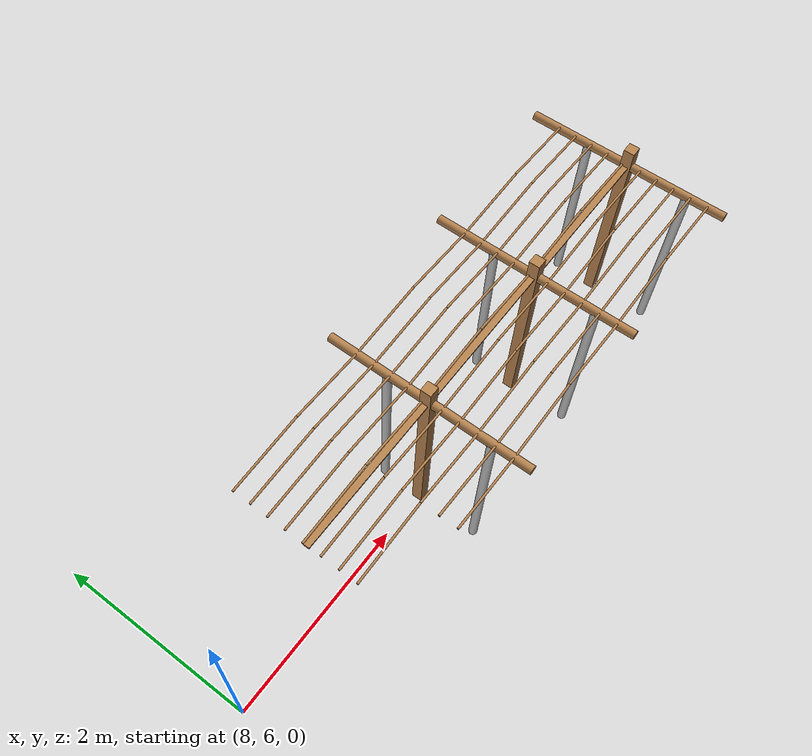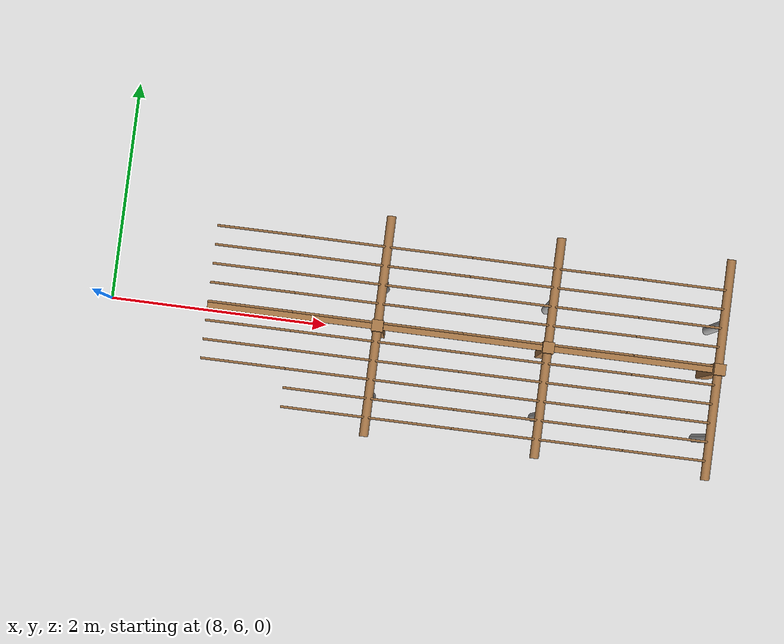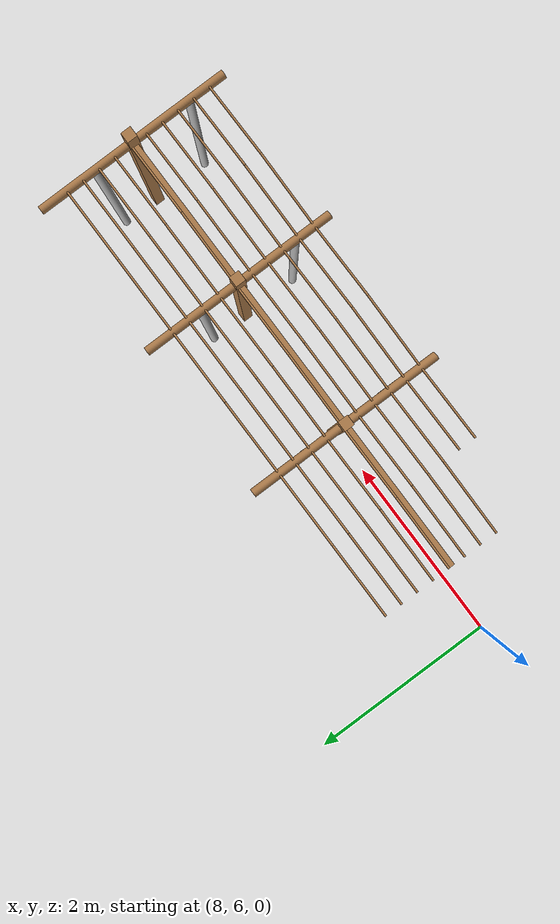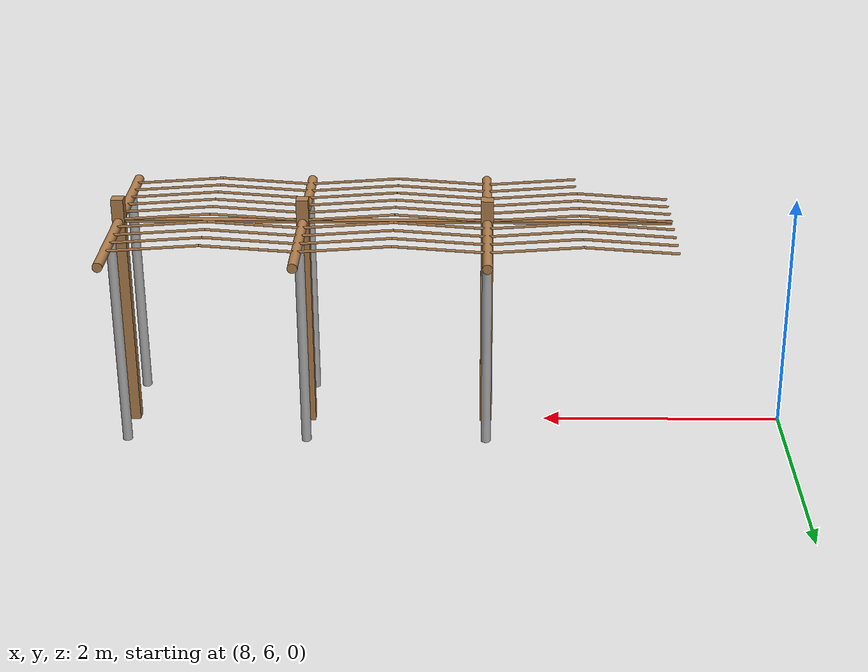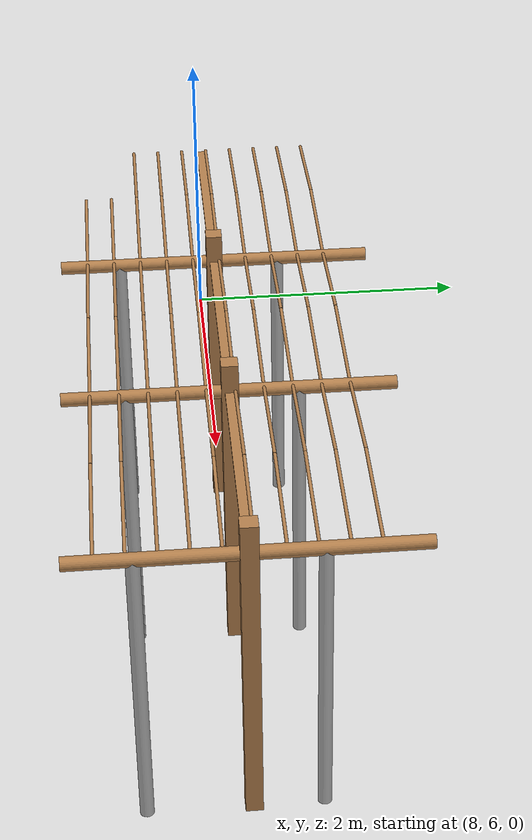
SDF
<sdf version="1.4">
 <model name="pergola">
  <include><name>post_83</name><pose>10.5 6.0 0 0 0 0</pose><uri>model://post</uri></include>
  <include><name>post_94</name><pose>12.0 6.0 0 0 0 0</pose><uri>model://post</uri></include>
  <include><name>post_105</name><pose>13.5 6.0 0 0 0 0</pose><uri>model://post</uri></include>
  <link name="beam_72">
   <pose>9.75 6.0 1.81 0 0 0</pose>
   <collision name="collision"><geometry><box><size>1.5 0.06 0.02</size></box></geometry></collision>
   <visual name="visual">
    <geometry><box><size>1.5 0.06 0.02</size></box></geometry>
    <material><script><name>Gazebo/Wood</name></script></material>
   </visual>
   <inertial>
    <mass>5</mass>
    <inertia>
     <ixx>0.0016666666666666668</ixx>
     <ixy>0.0</ixy>
     <ixz>0.0</ixz>
     <iyy>0.9390000000000001</iyy>
     <iyz>0.0</iyz>
     <izz>0.9376666666666665</izz>
    </inertia>
   </inertial>
  </link>
  <link name="beam_83">
   <pose>11.25 6.0 1.81 0 0 0</pose>
   <collision name="collision"><geometry><box><size>1.5 0.06 0.02</size></box></geometry></collision>
   <visual name="visual">
    <geometry><box><size>1.5 0.06 0.02</size></box></geometry>
    <material><script><name>Gazebo/Wood</name></script></material>
   </visual>
   <inertial>
    <mass>5</mass>
    <inertia>
     <ixx>0.0016666666666666668</ixx>
     <ixy>0.0</ixy>
     <ixz>0.0</ixz>
     <iyy>0.9390000000000001</iyy>
     <iyz>0.0</iyz>
     <izz>0.9376666666666665</izz>
    </inertia>
   </inertial>
  </link>
  <link name="beam_94">
   <pose>12.75 6.0 1.81 0 0 0</pose>
   <collision name="collision"><geometry><box><size>1.5 0.06 0.02</size></box></geometry></collision>
   <visual name="visual">
    <geometry><box><size>1.5 0.06 0.02</size></box></geometry>
    <material><script><name>Gazebo/Wood</name></script></material>
   </visual>
   <inertial>
    <mass>5</mass>
    <inertia>
     <ixx>0.0016666666666666668</ixx>
     <ixy>0.0</ixy>
     <ixz>0.0</ixz>
     <iyy>0.9390000000000001</iyy>
     <iyz>0.0</iyz>
     <izz>0.9376666666666665</izz>
    </inertia>
   </inertial>
  </link>
  <include><name>tree_75</name><pose>10.5 5.4 0 0 0 0</pose><uri>model://tree_trunk</uri></include>
  <include><name>tree_76</name><pose>10.5 6.4 0 0 0 0</pose><uri>model://tree_trunk</uri></include>
  <include><name>tree_85</name><pose>12.0 5.4 0 0 0 0</pose><uri>model://tree_trunk</uri></include>
  <include><name>tree_86</name><pose>12.0 6.4 0 0 0 0</pose><uri>model://tree_trunk</uri></include>
  <include><name>tree_95</name><pose>13.5 5.4 0 0 0 0</pose><uri>model://tree_trunk</uri></include>
  <include><name>tree_96</name><pose>13.5 6.4 0 0 0 0</pose><uri>model://tree_trunk</uri></include>
  <link name="baseBranch_75">
   <pose>10.5 5.5 1.8 1.5707963267948966 0 0</pose>
   <collision name="collision">
    <geometry><cylinder><radius>0.04</radius><length>0.94</length></cylinder></geometry>
   </collision>
   <visual name="visual">
    <geometry><cylinder><radius>0.04</radius><length>0.94</length></cylinder></geometry>
    <material><script><name>Gazebo/WoodFloor</name></script></material>
   </visual>
   <inertial>
    <mass>10</mass>
    <inertia>
     <ixx>0.7403333333333334</ixx>
     <ixy>0.0</ixy>
     <ixz>0.0</ixz>
     <iyy>0.7403333333333334</iyy>
     <iyz>0.0</iyz>
     <izz>0.008</izz>
    </inertia>
   </inertial>
  </link>
  <link name="baseBranch_76">
   <pose>10.5 6.5 1.8 1.5707963267948966 0 0</pose>
   <collision name="collision">
    <geometry><cylinder><radius>0.04</radius><length>0.94</length></cylinder></geometry>
   </collision>
   <visual name="visual">
    <geometry><cylinder><radius>0.04</radius><length>0.94</length></cylinder></geometry>
    <material><script><name>Gazebo/WoodFloor</name></script></material>
   </visual>
   <inertial>
    <mass>10</mass>
    <inertia>
     <ixx>0.7403333333333334</ixx>
     <ixy>0.0</ixy>
     <ixz>0.0</ixz>
     <iyy>0.7403333333333334</iyy>
     <iyz>0.0</iyz>
     <izz>0.008</izz>
    </inertia>
   </inertial>
  </link>
  <link name="baseBranch_85">
   <pose>12.0 5.5 1.8 1.5707963267948966 0 0</pose>
   <collision name="collision">
    <geometry><cylinder><radius>0.04</radius><length>0.94</length></cylinder></geometry>
   </collision>
   <visual name="visual">
    <geometry><cylinder><radius>0.04</radius><length>0.94</length></cylinder></geometry>
    <material><script><name>Gazebo/WoodFloor</name></script></material>
   </visual>
   <inertial>
    <mass>10</mass>
    <inertia>
     <ixx>0.7403333333333334</ixx>
     <ixy>0.0</ixy>
     <ixz>0.0</ixz>
     <iyy>0.7403333333333334</iyy>
     <iyz>0.0</iyz>
     <izz>0.008</izz>
    </inertia>
   </inertial>
  </link>
  <link name="baseBranch_86">
   <pose>12.0 6.5 1.8 1.5707963267948966 0 0</pose>
   <collision name="collision">
    <geometry><cylinder><radius>0.04</radius><length>0.94</length></cylinder></geometry>
   </collision>
   <visual name="visual">
    <geometry><cylinder><radius>0.04</radius><length>0.94</length></cylinder></geometry>
    <material><script><name>Gazebo/WoodFloor</name></script></material>
   </visual>
   <inertial>
    <mass>10</mass>
    <inertia>
     <ixx>0.7403333333333334</ixx>
     <ixy>0.0</ixy>
     <ixz>0.0</ixz>
     <iyy>0.7403333333333334</iyy>
     <iyz>0.0</iyz>
     <izz>0.008</izz>
    </inertia>
   </inertial>
  </link>
  <link name="baseBranch_95">
   <pose>13.5 5.5 1.8 1.5707963267948966 0 0</pose>
   <collision name="collision">
    <geometry><cylinder><radius>0.04</radius><length>0.94</length></cylinder></geometry>
   </collision>
   <visual name="visual">
    <geometry><cylinder><radius>0.04</radius><length>0.94</length></cylinder></geometry>
    <material><script><name>Gazebo/WoodFloor</name></script></material>
   </visual>
   <inertial>
    <mass>10</mass>
    <inertia>
     <ixx>0.7403333333333334</ixx>
     <ixy>0.0</ixy>
     <ixz>0.0</ixz>
     <iyy>0.7403333333333334</iyy>
     <iyz>0.0</iyz>
     <izz>0.008</izz>
    </inertia>
   </inertial>
  </link>
  <link name="baseBranch_96">
   <pose>13.5 6.5 1.8 1.5707963267948966 0 0</pose>
   <collision name="collision">
    <geometry><cylinder><radius>0.04</radius><length>0.94</length></cylinder></geometry>
   </collision>
   <visual name="visual">
    <geometry><cylinder><radius>0.04</radius><length>0.94</length></cylinder></geometry>
    <material><script><name>Gazebo/WoodFloor</name></script></material>
   </visual>
   <inertial>
    <mass>10</mass>
    <inertia>
     <ixx>0.7403333333333334</ixx>
     <ixy>0.0</ixy>
     <ixz>0.0</ixz>
     <iyy>0.7403333333333334</iyy>
     <iyz>0.0</iyz>
     <izz>0.008</izz>
    </inertia>
   </inertial>
  </link>
  <link name="vine_783">
   <pose>10.125 5.196666666666666 1.85 0 -1.5042281630190728 0</pose>
   <collision name="collision">
    <geometry><cylinder><radius>0.01</radius><length>0.7516648189186453</length></cylinder></geometry>
   </collision>
   <visual name="visual">
    <geometry><cylinder><radius>0.01</radius><length>0.7516648189186453</length></cylinder></geometry>
    <material><script><name>Gazebo/WoodFloor</name></script></material>
   </visual>
   <inertial>
    <mass>5</mass>
    <inertia>
     <ixx>0.23554166666666657</ixx>
     <ixy>0.0</ixy>
     <ixz>0.0</ixz>
     <iyy>0.23554166666666657</iyy>
     <iyz>0.0</iyz>
     <izz>0.00025</izz>
    </inertia>
   </inertial>
  </link>
  <link name="vine_785">
   <pose>10.125 5.363333333333333 1.85 0 -1.5042281630190728 0</pose>
   <collision name="collision">
    <geometry><cylinder><radius>0.01</radius><length>0.7516648189186453</length></cylinder></geometry>
   </collision>
   <visual name="visual">
    <geometry><cylinder><radius>0.01</radius><length>0.7516648189186453</length></cylinder></geometry>
    <material><script><name>Gazebo/WoodFloor</name></script></material>
   </visual>
   <inertial>
    <mass>5</mass>
    <inertia>
     <ixx>0.23554166666666657</ixx>
     <ixy>0.0</ixy>
     <ixz>0.0</ixz>
     <iyy>0.23554166666666657</iyy>
     <iyz>0.0</iyz>
     <izz>0.00025</izz>
    </inertia>
   </inertial>
  </link>
  <link name="vine_786">
   <pose>9.375 5.53 1.85 0 1.5042281630190728 0</pose>
   <collision name="collision">
    <geometry><cylinder><radius>0.01</radius><length>0.7516648189186453</length></cylinder></geometry>
   </collision>
   <visual name="visual">
    <geometry><cylinder><radius>0.01</radius><length>0.7516648189186453</length></cylinder></geometry>
    <material><script><name>Gazebo/WoodFloor</name></script></material>
   </visual>
   <inertial>
    <mass>5</mass>
    <inertia>
     <ixx>0.23554166666666657</ixx>
     <ixy>0.0</ixy>
     <ixz>0.0</ixz>
     <iyy>0.23554166666666657</iyy>
     <iyz>0.0</iyz>
     <izz>0.00025</izz>
    </inertia>
   </inertial>
  </link>
  <link name="vine_787">
   <pose>10.125 5.53 1.85 0 -1.5042281630190728 0</pose>
   <collision name="collision">
    <geometry><cylinder><radius>0.01</radius><length>0.7516648189186453</length></cylinder></geometry>
   </collision>
   <visual name="visual">
    <geometry><cylinder><radius>0.01</radius><length>0.7516648189186453</length></cylinder></geometry>
    <material><script><name>Gazebo/WoodFloor</name></script></material>
   </visual>
   <inertial>
    <mass>5</mass>
    <inertia>
     <ixx>0.23554166666666657</ixx>
     <ixy>0.0</ixy>
     <ixz>0.0</ixz>
     <iyy>0.23554166666666657</iyy>
     <iyz>0.0</iyz>
     <izz>0.00025</izz>
    </inertia>
   </inertial>
  </link>
  <link name="vine_788">
   <pose>9.375 5.696666666666666 1.85 0 1.5042281630190728 0</pose>
   <collision name="collision">
    <geometry><cylinder><radius>0.01</radius><length>0.7516648189186453</length></cylinder></geometry>
   </collision>
   <visual name="visual">
    <geometry><cylinder><radius>0.01</radius><length>0.7516648189186453</length></cylinder></geometry>
    <material><script><name>Gazebo/WoodFloor</name></script></material>
   </visual>
   <inertial>
    <mass>5</mass>
    <inertia>
     <ixx>0.23554166666666657</ixx>
     <ixy>0.0</ixy>
     <ixz>0.0</ixz>
     <iyy>0.23554166666666657</iyy>
     <iyz>0.0</iyz>
     <izz>0.00025</izz>
    </inertia>
   </inertial>
  </link>
  <link name="vine_789">
   <pose>10.125 5.696666666666666 1.85 0 -1.5042281630190728 0</pose>
   <collision name="collision">
    <geometry><cylinder><radius>0.01</radius><length>0.7516648189186453</length></cylinder></geometry>
   </collision>
   <visual name="visual">
    <geometry><cylinder><radius>0.01</radius><length>0.7516648189186453</length></cylinder></geometry>
    <material><script><name>Gazebo/WoodFloor</name></script></material>
   </visual>
   <inertial>
    <mass>5</mass>
    <inertia>
     <ixx>0.23554166666666657</ixx>
     <ixy>0.0</ixy>
     <ixz>0.0</ixz>
     <iyy>0.23554166666666657</iyy>
     <iyz>0.0</iyz>
     <izz>0.00025</izz>
    </inertia>
   </inertial>
  </link>
  <link name="vine_790">
   <pose>9.375 5.863333333333333 1.85 0 1.5042281630190728 0</pose>
   <collision name="collision">
    <geometry><cylinder><radius>0.01</radius><length>0.7516648189186453</length></cylinder></geometry>
   </collision>
   <visual name="visual">
    <geometry><cylinder><radius>0.01</radius><length>0.7516648189186453</length></cylinder></geometry>
    <material><script><name>Gazebo/WoodFloor</name></script></material>
   </visual>
   <inertial>
    <mass>5</mass>
    <inertia>
     <ixx>0.23554166666666657</ixx>
     <ixy>0.0</ixy>
     <ixz>0.0</ixz>
     <iyy>0.23554166666666657</iyy>
     <iyz>0.0</iyz>
     <izz>0.00025</izz>
    </inertia>
   </inertial>
  </link>
  <link name="vine_791">
   <pose>10.125 5.863333333333333 1.85 0 -1.5042281630190728 0</pose>
   <collision name="collision">
    <geometry><cylinder><radius>0.01</radius><length>0.7516648189186453</length></cylinder></geometry>
   </collision>
   <visual name="visual">
    <geometry><cylinder><radius>0.01</radius><length>0.7516648189186453</length></cylinder></geometry>
    <material><script><name>Gazebo/WoodFloor</name></script></material>
   </visual>
   <inertial>
    <mass>5</mass>
    <inertia>
     <ixx>0.23554166666666657</ixx>
     <ixy>0.0</ixy>
     <ixz>0.0</ixz>
     <iyy>0.23554166666666657</iyy>
     <iyz>0.0</iyz>
     <izz>0.00025</izz>
    </inertia>
   </inertial>
  </link>
  <link name="vine_792">
   <pose>9.375 6.03 1.85 0 1.5042281630190728 0</pose>
   <collision name="collision">
    <geometry><cylinder><radius>0.01</radius><length>0.7516648189186453</length></cylinder></geometry>
   </collision>
   <visual name="visual">
    <geometry><cylinder><radius>0.01</radius><length>0.7516648189186453</length></cylinder></geometry>
    <material><script><name>Gazebo/WoodFloor</name></script></material>
   </visual>
   <inertial>
    <mass>5</mass>
    <inertia>
     <ixx>0.23554166666666657</ixx>
     <ixy>0.0</ixy>
     <ixz>0.0</ixz>
     <iyy>0.23554166666666657</iyy>
     <iyz>0.0</iyz>
     <izz>0.00025</izz>
    </inertia>
   </inertial>
  </link>
  <link name="vine_793">
   <pose>10.125 6.03 1.85 0 -1.5042281630190728 0</pose>
   <collision name="collision">
    <geometry><cylinder><radius>0.01</radius><length>0.7516648189186453</length></cylinder></geometry>
   </collision>
   <visual name="visual">
    <geometry><cylinder><radius>0.01</radius><length>0.7516648189186453</length></cylinder></geometry>
    <material><script><name>Gazebo/WoodFloor</name></script></material>
   </visual>
   <inertial>
    <mass>5</mass>
    <inertia>
     <ixx>0.23554166666666657</ixx>
     <ixy>0.0</ixy>
     <ixz>0.0</ixz>
     <iyy>0.23554166666666657</iyy>
     <iyz>0.0</iyz>
     <izz>0.00025</izz>
    </inertia>
   </inertial>
  </link>
  <link name="vine_794">
   <pose>9.375 6.196666666666666 1.85 0 1.5042281630190728 0</pose>
   <collision name="collision">
    <geometry><cylinder><radius>0.01</radius><length>0.7516648189186453</length></cylinder></geometry>
   </collision>
   <visual name="visual">
    <geometry><cylinder><radius>0.01</radius><length>0.7516648189186453</length></cylinder></geometry>
    <material><script><name>Gazebo/WoodFloor</name></script></material>
   </visual>
   <inertial>
    <mass>5</mass>
    <inertia>
     <ixx>0.23554166666666657</ixx>
     <ixy>0.0</ixy>
     <ixz>0.0</ixz>
     <iyy>0.23554166666666657</iyy>
     <iyz>0.0</iyz>
     <izz>0.00025</izz>
    </inertia>
   </inertial>
  </link>
  <link name="vine_795">
   <pose>10.125 6.196666666666666 1.85 0 -1.5042281630190728 0</pose>
   <collision name="collision">
    <geometry><cylinder><radius>0.01</radius><length>0.7516648189186453</length></cylinder></geometry>
   </collision>
   <visual name="visual">
    <geometry><cylinder><radius>0.01</radius><length>0.7516648189186453</length></cylinder></geometry>
    <material><script><name>Gazebo/WoodFloor</name></script></material>
   </visual>
   <inertial>
    <mass>5</mass>
    <inertia>
     <ixx>0.23554166666666657</ixx>
     <ixy>0.0</ixy>
     <ixz>0.0</ixz>
     <iyy>0.23554166666666657</iyy>
     <iyz>0.0</iyz>
     <izz>0.00025</izz>
    </inertia>
   </inertial>
  </link>
  <link name="vine_796">
   <pose>9.375 6.363333333333333 1.85 0 1.5042281630190728 0</pose>
   <collision name="collision">
    <geometry><cylinder><radius>0.01</radius><length>0.7516648189186453</length></cylinder></geometry>
   </collision>
   <visual name="visual">
    <geometry><cylinder><radius>0.01</radius><length>0.7516648189186453</length></cylinder></geometry>
    <material><script><name>Gazebo/WoodFloor</name></script></material>
   </visual>
   <inertial>
    <mass>5</mass>
    <inertia>
     <ixx>0.23554166666666657</ixx>
     <ixy>0.0</ixy>
     <ixz>0.0</ixz>
     <iyy>0.23554166666666657</iyy>
     <iyz>0.0</iyz>
     <izz>0.00025</izz>
    </inertia>
   </inertial>
  </link>
  <link name="vine_797">
   <pose>10.125 6.363333333333333 1.85 0 -1.5042281630190728 0</pose>
   <collision name="collision">
    <geometry><cylinder><radius>0.01</radius><length>0.7516648189186453</length></cylinder></geometry>
   </collision>
   <visual name="visual">
    <geometry><cylinder><radius>0.01</radius><length>0.7516648189186453</length></cylinder></geometry>
    <material><script><name>Gazebo/WoodFloor</name></script></material>
   </visual>
   <inertial>
    <mass>5</mass>
    <inertia>
     <ixx>0.23554166666666657</ixx>
     <ixy>0.0</ixy>
     <ixz>0.0</ixz>
     <iyy>0.23554166666666657</iyy>
     <iyz>0.0</iyz>
     <izz>0.00025</izz>
    </inertia>
   </inertial>
  </link>
  <link name="vine_798">
   <pose>9.375 6.53 1.85 0 1.5042281630190728 0</pose>
   <collision name="collision">
    <geometry><cylinder><radius>0.01</radius><length>0.7516648189186453</length></cylinder></geometry>
   </collision>
   <visual name="visual">
    <geometry><cylinder><radius>0.01</radius><length>0.7516648189186453</length></cylinder></geometry>
    <material><script><name>Gazebo/WoodFloor</name></script></material>
   </visual>
   <inertial>
    <mass>5</mass>
    <inertia>
     <ixx>0.23554166666666657</ixx>
     <ixy>0.0</ixy>
     <ixz>0.0</ixz>
     <iyy>0.23554166666666657</iyy>
     <iyz>0.0</iyz>
     <izz>0.00025</izz>
    </inertia>
   </inertial>
  </link>
  <link name="vine_799">
   <pose>10.125 6.53 1.85 0 -1.5042281630190728 0</pose>
   <collision name="collision">
    <geometry><cylinder><radius>0.01</radius><length>0.7516648189186453</length></cylinder></geometry>
   </collision>
   <visual name="visual">
    <geometry><cylinder><radius>0.01</radius><length>0.7516648189186453</length></cylinder></geometry>
    <material><script><name>Gazebo/WoodFloor</name></script></material>
   </visual>
   <inertial>
    <mass>5</mass>
    <inertia>
     <ixx>0.23554166666666657</ixx>
     <ixy>0.0</ixy>
     <ixz>0.0</ixz>
     <iyy>0.23554166666666657</iyy>
     <iyz>0.0</iyz>
     <izz>0.00025</izz>
    </inertia>
   </inertial>
  </link>
  <link name="vine_800">
   <pose>9.375 6.696666666666666 1.85 0 1.5042281630190728 0</pose>
   <collision name="collision">
    <geometry><cylinder><radius>0.01</radius><length>0.7516648189186453</length></cylinder></geometry>
   </collision>
   <visual name="visual">
    <geometry><cylinder><radius>0.01</radius><length>0.7516648189186453</length></cylinder></geometry>
    <material><script><name>Gazebo/WoodFloor</name></script></material>
   </visual>
   <inertial>
    <mass>5</mass>
    <inertia>
     <ixx>0.23554166666666657</ixx>
     <ixy>0.0</ixy>
     <ixz>0.0</ixz>
     <iyy>0.23554166666666657</iyy>
     <iyz>0.0</iyz>
     <izz>0.00025</izz>
    </inertia>
   </inertial>
  </link>
  <link name="vine_801">
   <pose>10.125 6.696666666666666 1.85 0 -1.5042281630190728 0</pose>
   <collision name="collision">
    <geometry><cylinder><radius>0.01</radius><length>0.7516648189186453</length></cylinder></geometry>
   </collision>
   <visual name="visual">
    <geometry><cylinder><radius>0.01</radius><length>0.7516648189186453</length></cylinder></geometry>
    <material><script><name>Gazebo/WoodFloor</name></script></material>
   </visual>
   <inertial>
    <mass>5</mass>
    <inertia>
     <ixx>0.23554166666666657</ixx>
     <ixy>0.0</ixy>
     <ixz>0.0</ixz>
     <iyy>0.23554166666666657</iyy>
     <iyz>0.0</iyz>
     <izz>0.00025</izz>
    </inertia>
   </inertial>
  </link>
  <link name="vine_902">
   <pose>10.875 5.196666666666666 1.85 0 1.5042281630190728 0</pose>
   <collision name="collision">
    <geometry><cylinder><radius>0.01</radius><length>0.7516648189186453</length></cylinder></geometry>
   </collision>
   <visual name="visual">
    <geometry><cylinder><radius>0.01</radius><length>0.7516648189186453</length></cylinder></geometry>
    <material><script><name>Gazebo/WoodFloor</name></script></material>
   </visual>
   <inertial>
    <mass>5</mass>
    <inertia>
     <ixx>0.23554166666666657</ixx>
     <ixy>0.0</ixy>
     <ixz>0.0</ixz>
     <iyy>0.23554166666666657</iyy>
     <iyz>0.0</iyz>
     <izz>0.00025</izz>
    </inertia>
   </inertial>
  </link>
  <link name="vine_903">
   <pose>11.625 5.196666666666666 1.85 0 -1.5042281630190728 0</pose>
   <collision name="collision">
    <geometry><cylinder><radius>0.01</radius><length>0.7516648189186453</length></cylinder></geometry>
   </collision>
   <visual name="visual">
    <geometry><cylinder><radius>0.01</radius><length>0.7516648189186453</length></cylinder></geometry>
    <material><script><name>Gazebo/WoodFloor</name></script></material>
   </visual>
   <inertial>
    <mass>5</mass>
    <inertia>
     <ixx>0.23554166666666657</ixx>
     <ixy>0.0</ixy>
     <ixz>0.0</ixz>
     <iyy>0.23554166666666657</iyy>
     <iyz>0.0</iyz>
     <izz>0.00025</izz>
    </inertia>
   </inertial>
  </link>
  <link name="vine_904">
   <pose>10.875 5.363333333333333 1.85 0 1.5042281630190728 0</pose>
   <collision name="collision">
    <geometry><cylinder><radius>0.01</radius><length>0.7516648189186453</length></cylinder></geometry>
   </collision>
   <visual name="visual">
    <geometry><cylinder><radius>0.01</radius><length>0.7516648189186453</length></cylinder></geometry>
    <material><script><name>Gazebo/WoodFloor</name></script></material>
   </visual>
   <inertial>
    <mass>5</mass>
    <inertia>
     <ixx>0.23554166666666657</ixx>
     <ixy>0.0</ixy>
     <ixz>0.0</ixz>
     <iyy>0.23554166666666657</iyy>
     <iyz>0.0</iyz>
     <izz>0.00025</izz>
    </inertia>
   </inertial>
  </link>
  <link name="vine_905">
   <pose>11.625 5.363333333333333 1.85 0 -1.5042281630190728 0</pose>
   <collision name="collision">
    <geometry><cylinder><radius>0.01</radius><length>0.7516648189186453</length></cylinder></geometry>
   </collision>
   <visual name="visual">
    <geometry><cylinder><radius>0.01</radius><length>0.7516648189186453</length></cylinder></geometry>
    <material><script><name>Gazebo/WoodFloor</name></script></material>
   </visual>
   <inertial>
    <mass>5</mass>
    <inertia>
     <ixx>0.23554166666666657</ixx>
     <ixy>0.0</ixy>
     <ixz>0.0</ixz>
     <iyy>0.23554166666666657</iyy>
     <iyz>0.0</iyz>
     <izz>0.00025</izz>
    </inertia>
   </inertial>
  </link>
  <link name="vine_906">
   <pose>10.875 5.53 1.85 0 1.5042281630190728 0</pose>
   <collision name="collision">
    <geometry><cylinder><radius>0.01</radius><length>0.7516648189186453</length></cylinder></geometry>
   </collision>
   <visual name="visual">
    <geometry><cylinder><radius>0.01</radius><length>0.7516648189186453</length></cylinder></geometry>
    <material><script><name>Gazebo/WoodFloor</name></script></material>
   </visual>
   <inertial>
    <mass>5</mass>
    <inertia>
     <ixx>0.23554166666666657</ixx>
     <ixy>0.0</ixy>
     <ixz>0.0</ixz>
     <iyy>0.23554166666666657</iyy>
     <iyz>0.0</iyz>
     <izz>0.00025</izz>
    </inertia>
   </inertial>
  </link>
  <link name="vine_907">
   <pose>11.625 5.53 1.85 0 -1.5042281630190728 0</pose>
   <collision name="collision">
    <geometry><cylinder><radius>0.01</radius><length>0.7516648189186453</length></cylinder></geometry>
   </collision>
   <visual name="visual">
    <geometry><cylinder><radius>0.01</radius><length>0.7516648189186453</length></cylinder></geometry>
    <material><script><name>Gazebo/WoodFloor</name></script></material>
   </visual>
   <inertial>
    <mass>5</mass>
    <inertia>
     <ixx>0.23554166666666657</ixx>
     <ixy>0.0</ixy>
     <ixz>0.0</ixz>
     <iyy>0.23554166666666657</iyy>
     <iyz>0.0</iyz>
     <izz>0.00025</izz>
    </inertia>
   </inertial>
  </link>
  <link name="vine_908">
   <pose>10.875 5.696666666666666 1.85 0 1.5042281630190728 0</pose>
   <collision name="collision">
    <geometry><cylinder><radius>0.01</radius><length>0.7516648189186453</length></cylinder></geometry>
   </collision>
   <visual name="visual">
    <geometry><cylinder><radius>0.01</radius><length>0.7516648189186453</length></cylinder></geometry>
    <material><script><name>Gazebo/WoodFloor</name></script></material>
   </visual>
   <inertial>
    <mass>5</mass>
    <inertia>
     <ixx>0.23554166666666657</ixx>
     <ixy>0.0</ixy>
     <ixz>0.0</ixz>
     <iyy>0.23554166666666657</iyy>
     <iyz>0.0</iyz>
     <izz>0.00025</izz>
    </inertia>
   </inertial>
  </link>
  <link name="vine_909">
   <pose>11.625 5.696666666666666 1.85 0 -1.5042281630190728 0</pose>
   <collision name="collision">
    <geometry><cylinder><radius>0.01</radius><length>0.7516648189186453</length></cylinder></geometry>
   </collision>
   <visual name="visual">
    <geometry><cylinder><radius>0.01</radius><length>0.7516648189186453</length></cylinder></geometry>
    <material><script><name>Gazebo/WoodFloor</name></script></material>
   </visual>
   <inertial>
    <mass>5</mass>
    <inertia>
     <ixx>0.23554166666666657</ixx>
     <ixy>0.0</ixy>
     <ixz>0.0</ixz>
     <iyy>0.23554166666666657</iyy>
     <iyz>0.0</iyz>
     <izz>0.00025</izz>
    </inertia>
   </inertial>
  </link>
  <link name="vine_910">
   <pose>10.875 5.863333333333333 1.85 0 1.5042281630190728 0</pose>
   <collision name="collision">
    <geometry><cylinder><radius>0.01</radius><length>0.7516648189186453</length></cylinder></geometry>
   </collision>
   <visual name="visual">
    <geometry><cylinder><radius>0.01</radius><length>0.7516648189186453</length></cylinder></geometry>
    <material><script><name>Gazebo/WoodFloor</name></script></material>
   </visual>
   <inertial>
    <mass>5</mass>
    <inertia>
     <ixx>0.23554166666666657</ixx>
     <ixy>0.0</ixy>
     <ixz>0.0</ixz>
     <iyy>0.23554166666666657</iyy>
     <iyz>0.0</iyz>
     <izz>0.00025</izz>
    </inertia>
   </inertial>
  </link>
  <link name="vine_911">
   <pose>11.625 5.863333333333333 1.85 0 -1.5042281630190728 0</pose>
   <collision name="collision">
    <geometry><cylinder><radius>0.01</radius><length>0.7516648189186453</length></cylinder></geometry>
   </collision>
   <visual name="visual">
    <geometry><cylinder><radius>0.01</radius><length>0.7516648189186453</length></cylinder></geometry>
    <material><script><name>Gazebo/WoodFloor</name></script></material>
   </visual>
   <inertial>
    <mass>5</mass>
    <inertia>
     <ixx>0.23554166666666657</ixx>
     <ixy>0.0</ixy>
     <ixz>0.0</ixz>
     <iyy>0.23554166666666657</iyy>
     <iyz>0.0</iyz>
     <izz>0.00025</izz>
    </inertia>
   </inertial>
  </link>
  <link name="vine_912">
   <pose>10.875 6.03 1.85 0 1.5042281630190728 0</pose>
   <collision name="collision">
    <geometry><cylinder><radius>0.01</radius><length>0.7516648189186453</length></cylinder></geometry>
   </collision>
   <visual name="visual">
    <geometry><cylinder><radius>0.01</radius><length>0.7516648189186453</length></cylinder></geometry>
    <material><script><name>Gazebo/WoodFloor</name></script></material>
   </visual>
   <inertial>
    <mass>5</mass>
    <inertia>
     <ixx>0.23554166666666657</ixx>
     <ixy>0.0</ixy>
     <ixz>0.0</ixz>
     <iyy>0.23554166666666657</iyy>
     <iyz>0.0</iyz>
     <izz>0.00025</izz>
    </inertia>
   </inertial>
  </link>
  <link name="vine_913">
   <pose>11.625 6.03 1.85 0 -1.5042281630190728 0</pose>
   <collision name="collision">
    <geometry><cylinder><radius>0.01</radius><length>0.7516648189186453</length></cylinder></geometry>
   </collision>
   <visual name="visual">
    <geometry><cylinder><radius>0.01</radius><length>0.7516648189186453</length></cylinder></geometry>
    <material><script><name>Gazebo/WoodFloor</name></script></material>
   </visual>
   <inertial>
    <mass>5</mass>
    <inertia>
     <ixx>0.23554166666666657</ixx>
     <ixy>0.0</ixy>
     <ixz>0.0</ixz>
     <iyy>0.23554166666666657</iyy>
     <iyz>0.0</iyz>
     <izz>0.00025</izz>
    </inertia>
   </inertial>
  </link>
  <link name="vine_914">
   <pose>10.875 6.196666666666666 1.85 0 1.5042281630190728 0</pose>
   <collision name="collision">
    <geometry><cylinder><radius>0.01</radius><length>0.7516648189186453</length></cylinder></geometry>
   </collision>
   <visual name="visual">
    <geometry><cylinder><radius>0.01</radius><length>0.7516648189186453</length></cylinder></geometry>
    <material><script><name>Gazebo/WoodFloor</name></script></material>
   </visual>
   <inertial>
    <mass>5</mass>
    <inertia>
     <ixx>0.23554166666666657</ixx>
     <ixy>0.0</ixy>
     <ixz>0.0</ixz>
     <iyy>0.23554166666666657</iyy>
     <iyz>0.0</iyz>
     <izz>0.00025</izz>
    </inertia>
   </inertial>
  </link>
  <link name="vine_915">
   <pose>11.625 6.196666666666666 1.85 0 -1.5042281630190728 0</pose>
   <collision name="collision">
    <geometry><cylinder><radius>0.01</radius><length>0.7516648189186453</length></cylinder></geometry>
   </collision>
   <visual name="visual">
    <geometry><cylinder><radius>0.01</radius><length>0.7516648189186453</length></cylinder></geometry>
    <material><script><name>Gazebo/WoodFloor</name></script></material>
   </visual>
   <inertial>
    <mass>5</mass>
    <inertia>
     <ixx>0.23554166666666657</ixx>
     <ixy>0.0</ixy>
     <ixz>0.0</ixz>
     <iyy>0.23554166666666657</iyy>
     <iyz>0.0</iyz>
     <izz>0.00025</izz>
    </inertia>
   </inertial>
  </link>
  <link name="vine_916">
   <pose>10.875 6.363333333333333 1.85 0 1.5042281630190728 0</pose>
   <collision name="collision">
    <geometry><cylinder><radius>0.01</radius><length>0.7516648189186453</length></cylinder></geometry>
   </collision>
   <visual name="visual">
    <geometry><cylinder><radius>0.01</radius><length>0.7516648189186453</length></cylinder></geometry>
    <material><script><name>Gazebo/WoodFloor</name></script></material>
   </visual>
   <inertial>
    <mass>5</mass>
    <inertia>
     <ixx>0.23554166666666657</ixx>
     <ixy>0.0</ixy>
     <ixz>0.0</ixz>
     <iyy>0.23554166666666657</iyy>
     <iyz>0.0</iyz>
     <izz>0.00025</izz>
    </inertia>
   </inertial>
  </link>
  <link name="vine_917">
   <pose>11.625 6.363333333333333 1.85 0 -1.5042281630190728 0</pose>
   <collision name="collision">
    <geometry><cylinder><radius>0.01</radius><length>0.7516648189186453</length></cylinder></geometry>
   </collision>
   <visual name="visual">
    <geometry><cylinder><radius>0.01</radius><length>0.7516648189186453</length></cylinder></geometry>
    <material><script><name>Gazebo/WoodFloor</name></script></material>
   </visual>
   <inertial>
    <mass>5</mass>
    <inertia>
     <ixx>0.23554166666666657</ixx>
     <ixy>0.0</ixy>
     <ixz>0.0</ixz>
     <iyy>0.23554166666666657</iyy>
     <iyz>0.0</iyz>
     <izz>0.00025</izz>
    </inertia>
   </inertial>
  </link>
  <link name="vine_918">
   <pose>10.875 6.53 1.85 0 1.5042281630190728 0</pose>
   <collision name="collision">
    <geometry><cylinder><radius>0.01</radius><length>0.7516648189186453</length></cylinder></geometry>
   </collision>
   <visual name="visual">
    <geometry><cylinder><radius>0.01</radius><length>0.7516648189186453</length></cylinder></geometry>
    <material><script><name>Gazebo/WoodFloor</name></script></material>
   </visual>
   <inertial>
    <mass>5</mass>
    <inertia>
     <ixx>0.23554166666666657</ixx>
     <ixy>0.0</ixy>
     <ixz>0.0</ixz>
     <iyy>0.23554166666666657</iyy>
     <iyz>0.0</iyz>
     <izz>0.00025</izz>
    </inertia>
   </inertial>
  </link>
  <link name="vine_919">
   <pose>11.625 6.53 1.85 0 -1.5042281630190728 0</pose>
   <collision name="collision">
    <geometry><cylinder><radius>0.01</radius><length>0.7516648189186453</length></cylinder></geometry>
   </collision>
   <visual name="visual">
    <geometry><cylinder><radius>0.01</radius><length>0.7516648189186453</length></cylinder></geometry>
    <material><script><name>Gazebo/WoodFloor</name></script></material>
   </visual>
   <inertial>
    <mass>5</mass>
    <inertia>
     <ixx>0.23554166666666657</ixx>
     <ixy>0.0</ixy>
     <ixz>0.0</ixz>
     <iyy>0.23554166666666657</iyy>
     <iyz>0.0</iyz>
     <izz>0.00025</izz>
    </inertia>
   </inertial>
  </link>
  <link name="vine_920">
   <pose>10.875 6.696666666666666 1.85 0 1.5042281630190728 0</pose>
   <collision name="collision">
    <geometry><cylinder><radius>0.01</radius><length>0.7516648189186453</length></cylinder></geometry>
   </collision>
   <visual name="visual">
    <geometry><cylinder><radius>0.01</radius><length>0.7516648189186453</length></cylinder></geometry>
    <material><script><name>Gazebo/WoodFloor</name></script></material>
   </visual>
   <inertial>
    <mass>5</mass>
    <inertia>
     <ixx>0.23554166666666657</ixx>
     <ixy>0.0</ixy>
     <ixz>0.0</ixz>
     <iyy>0.23554166666666657</iyy>
     <iyz>0.0</iyz>
     <izz>0.00025</izz>
    </inertia>
   </inertial>
  </link>
  <link name="vine_921">
   <pose>11.625 6.696666666666666 1.85 0 -1.5042281630190728 0</pose>
   <collision name="collision">
    <geometry><cylinder><radius>0.01</radius><length>0.7516648189186453</length></cylinder></geometry>
   </collision>
   <visual name="visual">
    <geometry><cylinder><radius>0.01</radius><length>0.7516648189186453</length></cylinder></geometry>
    <material><script><name>Gazebo/WoodFloor</name></script></material>
   </visual>
   <inertial>
    <mass>5</mass>
    <inertia>
     <ixx>0.23554166666666657</ixx>
     <ixy>0.0</ixy>
     <ixz>0.0</ixz>
     <iyy>0.23554166666666657</iyy>
     <iyz>0.0</iyz>
     <izz>0.00025</izz>
    </inertia>
   </inertial>
  </link>
  <link name="vine_1022">
   <pose>12.375 5.196666666666666 1.85 0 1.5042281630190728 0</pose>
   <collision name="collision">
    <geometry><cylinder><radius>0.01</radius><length>0.7516648189186453</length></cylinder></geometry>
   </collision>
   <visual name="visual">
    <geometry><cylinder><radius>0.01</radius><length>0.7516648189186453</length></cylinder></geometry>
    <material><script><name>Gazebo/WoodFloor</name></script></material>
   </visual>
   <inertial>
    <mass>5</mass>
    <inertia>
     <ixx>0.23554166666666657</ixx>
     <ixy>0.0</ixy>
     <ixz>0.0</ixz>
     <iyy>0.23554166666666657</iyy>
     <iyz>0.0</iyz>
     <izz>0.00025</izz>
    </inertia>
   </inertial>
  </link>
  <link name="vine_1023">
   <pose>13.125 5.196666666666666 1.85 0 -1.5042281630190728 0</pose>
   <collision name="collision">
    <geometry><cylinder><radius>0.01</radius><length>0.7516648189186453</length></cylinder></geometry>
   </collision>
   <visual name="visual">
    <geometry><cylinder><radius>0.01</radius><length>0.7516648189186453</length></cylinder></geometry>
    <material><script><name>Gazebo/WoodFloor</name></script></material>
   </visual>
   <inertial>
    <mass>5</mass>
    <inertia>
     <ixx>0.23554166666666657</ixx>
     <ixy>0.0</ixy>
     <ixz>0.0</ixz>
     <iyy>0.23554166666666657</iyy>
     <iyz>0.0</iyz>
     <izz>0.00025</izz>
    </inertia>
   </inertial>
  </link>
  <link name="vine_1024">
   <pose>12.375 5.363333333333333 1.85 0 1.5042281630190728 0</pose>
   <collision name="collision">
    <geometry><cylinder><radius>0.01</radius><length>0.7516648189186453</length></cylinder></geometry>
   </collision>
   <visual name="visual">
    <geometry><cylinder><radius>0.01</radius><length>0.7516648189186453</length></cylinder></geometry>
    <material><script><name>Gazebo/WoodFloor</name></script></material>
   </visual>
   <inertial>
    <mass>5</mass>
    <inertia>
     <ixx>0.23554166666666657</ixx>
     <ixy>0.0</ixy>
     <ixz>0.0</ixz>
     <iyy>0.23554166666666657</iyy>
     <iyz>0.0</iyz>
     <izz>0.00025</izz>
    </inertia>
   </inertial>
  </link>
  <link name="vine_1025">
   <pose>13.125 5.363333333333333 1.85 0 -1.5042281630190728 0</pose>
   <collision name="collision">
    <geometry><cylinder><radius>0.01</radius><length>0.7516648189186453</length></cylinder></geometry>
   </collision>
   <visual name="visual">
    <geometry><cylinder><radius>0.01</radius><length>0.7516648189186453</length></cylinder></geometry>
    <material><script><name>Gazebo/WoodFloor</name></script></material>
   </visual>
   <inertial>
    <mass>5</mass>
    <inertia>
     <ixx>0.23554166666666657</ixx>
     <ixy>0.0</ixy>
     <ixz>0.0</ixz>
     <iyy>0.23554166666666657</iyy>
     <iyz>0.0</iyz>
     <izz>0.00025</izz>
    </inertia>
   </inertial>
  </link>
  <link name="vine_1026">
   <pose>12.375 5.53 1.85 0 1.5042281630190728 0</pose>
   <collision name="collision">
    <geometry><cylinder><radius>0.01</radius><length>0.7516648189186453</length></cylinder></geometry>
   </collision>
   <visual name="visual">
    <geometry><cylinder><radius>0.01</radius><length>0.7516648189186453</length></cylinder></geometry>
    <material><script><name>Gazebo/WoodFloor</name></script></material>
   </visual>
   <inertial>
    <mass>5</mass>
    <inertia>
     <ixx>0.23554166666666657</ixx>
     <ixy>0.0</ixy>
     <ixz>0.0</ixz>
     <iyy>0.23554166666666657</iyy>
     <iyz>0.0</iyz>
     <izz>0.00025</izz>
    </inertia>
   </inertial>
  </link>
  <link name="vine_1027">
   <pose>13.125 5.53 1.85 0 -1.5042281630190728 0</pose>
   <collision name="collision">
    <geometry><cylinder><radius>0.01</radius><length>0.7516648189186453</length></cylinder></geometry>
   </collision>
   <visual name="visual">
    <geometry><cylinder><radius>0.01</radius><length>0.7516648189186453</length></cylinder></geometry>
    <material><script><name>Gazebo/WoodFloor</name></script></material>
   </visual>
   <inertial>
    <mass>5</mass>
    <inertia>
     <ixx>0.23554166666666657</ixx>
     <ixy>0.0</ixy>
     <ixz>0.0</ixz>
     <iyy>0.23554166666666657</iyy>
     <iyz>0.0</iyz>
     <izz>0.00025</izz>
    </inertia>
   </inertial>
  </link>
  <link name="vine_1028">
   <pose>12.375 5.696666666666666 1.85 0 1.5042281630190728 0</pose>
   <collision name="collision">
    <geometry><cylinder><radius>0.01</radius><length>0.7516648189186453</length></cylinder></geometry>
   </collision>
   <visual name="visual">
    <geometry><cylinder><radius>0.01</radius><length>0.7516648189186453</length></cylinder></geometry>
    <material><script><name>Gazebo/WoodFloor</name></script></material>
   </visual>
   <inertial>
    <mass>5</mass>
    <inertia>
     <ixx>0.23554166666666657</ixx>
     <ixy>0.0</ixy>
     <ixz>0.0</ixz>
     <iyy>0.23554166666666657</iyy>
     <iyz>0.0</iyz>
     <izz>0.00025</izz>
    </inertia>
   </inertial>
  </link>
  <link name="vine_1029">
   <pose>13.125 5.696666666666666 1.85 0 -1.5042281630190728 0</pose>
   <collision name="collision">
    <geometry><cylinder><radius>0.01</radius><length>0.7516648189186453</length></cylinder></geometry>
   </collision>
   <visual name="visual">
    <geometry><cylinder><radius>0.01</radius><length>0.7516648189186453</length></cylinder></geometry>
    <material><script><name>Gazebo/WoodFloor</name></script></material>
   </visual>
   <inertial>
    <mass>5</mass>
    <inertia>
     <ixx>0.23554166666666657</ixx>
     <ixy>0.0</ixy>
     <ixz>0.0</ixz>
     <iyy>0.23554166666666657</iyy>
     <iyz>0.0</iyz>
     <izz>0.00025</izz>
    </inertia>
   </inertial>
  </link>
  <link name="vine_1030">
   <pose>12.375 5.863333333333333 1.85 0 1.5042281630190728 0</pose>
   <collision name="collision">
    <geometry><cylinder><radius>0.01</radius><length>0.7516648189186453</length></cylinder></geometry>
   </collision>
   <visual name="visual">
    <geometry><cylinder><radius>0.01</radius><length>0.7516648189186453</length></cylinder></geometry>
    <material><script><name>Gazebo/WoodFloor</name></script></material>
   </visual>
   <inertial>
    <mass>5</mass>
    <inertia>
     <ixx>0.23554166666666657</ixx>
     <ixy>0.0</ixy>
     <ixz>0.0</ixz>
     <iyy>0.23554166666666657</iyy>
     <iyz>0.0</iyz>
     <izz>0.00025</izz>
    </inertia>
   </inertial>
  </link>
  <link name="vine_1031">
   <pose>13.125 5.863333333333333 1.85 0 -1.5042281630190728 0</pose>
   <collision name="collision">
    <geometry><cylinder><radius>0.01</radius><length>0.7516648189186453</length></cylinder></geometry>
   </collision>
   <visual name="visual">
    <geometry><cylinder><radius>0.01</radius><length>0.7516648189186453</length></cylinder></geometry>
    <material><script><name>Gazebo/WoodFloor</name></script></material>
   </visual>
   <inertial>
    <mass>5</mass>
    <inertia>
     <ixx>0.23554166666666657</ixx>
     <ixy>0.0</ixy>
     <ixz>0.0</ixz>
     <iyy>0.23554166666666657</iyy>
     <iyz>0.0</iyz>
     <izz>0.00025</izz>
    </inertia>
   </inertial>
  </link>
  <link name="vine_1032">
   <pose>12.375 6.03 1.85 0 1.5042281630190728 0</pose>
   <collision name="collision">
    <geometry><cylinder><radius>0.01</radius><length>0.7516648189186453</length></cylinder></geometry>
   </collision>
   <visual name="visual">
    <geometry><cylinder><radius>0.01</radius><length>0.7516648189186453</length></cylinder></geometry>
    <material><script><name>Gazebo/WoodFloor</name></script></material>
   </visual>
   <inertial>
    <mass>5</mass>
    <inertia>
     <ixx>0.23554166666666657</ixx>
     <ixy>0.0</ixy>
     <ixz>0.0</ixz>
     <iyy>0.23554166666666657</iyy>
     <iyz>0.0</iyz>
     <izz>0.00025</izz>
    </inertia>
   </inertial>
  </link>
  <link name="vine_1033">
   <pose>13.125 6.03 1.85 0 -1.5042281630190728 0</pose>
   <collision name="collision">
    <geometry><cylinder><radius>0.01</radius><length>0.7516648189186453</length></cylinder></geometry>
   </collision>
   <visual name="visual">
    <geometry><cylinder><radius>0.01</radius><length>0.7516648189186453</length></cylinder></geometry>
    <material><script><name>Gazebo/WoodFloor</name></script></material>
   </visual>
   <inertial>
    <mass>5</mass>
    <inertia>
     <ixx>0.23554166666666657</ixx>
     <ixy>0.0</ixy>
     <ixz>0.0</ixz>
     <iyy>0.23554166666666657</iyy>
     <iyz>0.0</iyz>
     <izz>0.00025</izz>
    </inertia>
   </inertial>
  </link>
  <link name="vine_1034">
   <pose>12.375 6.196666666666666 1.85 0 1.5042281630190728 0</pose>
   <collision name="collision">
    <geometry><cylinder><radius>0.01</radius><length>0.7516648189186453</length></cylinder></geometry>
   </collision>
   <visual name="visual">
    <geometry><cylinder><radius>0.01</radius><length>0.7516648189186453</length></cylinder></geometry>
    <material><script><name>Gazebo/WoodFloor</name></script></material>
   </visual>
   <inertial>
    <mass>5</mass>
    <inertia>
     <ixx>0.23554166666666657</ixx>
     <ixy>0.0</ixy>
     <ixz>0.0</ixz>
     <iyy>0.23554166666666657</iyy>
     <iyz>0.0</iyz>
     <izz>0.00025</izz>
    </inertia>
   </inertial>
  </link>
  <link name="vine_1035">
   <pose>13.125 6.196666666666666 1.85 0 -1.5042281630190728 0</pose>
   <collision name="collision">
    <geometry><cylinder><radius>0.01</radius><length>0.7516648189186453</length></cylinder></geometry>
   </collision>
   <visual name="visual">
    <geometry><cylinder><radius>0.01</radius><length>0.7516648189186453</length></cylinder></geometry>
    <material><script><name>Gazebo/WoodFloor</name></script></material>
   </visual>
   <inertial>
    <mass>5</mass>
    <inertia>
     <ixx>0.23554166666666657</ixx>
     <ixy>0.0</ixy>
     <ixz>0.0</ixz>
     <iyy>0.23554166666666657</iyy>
     <iyz>0.0</iyz>
     <izz>0.00025</izz>
    </inertia>
   </inertial>
  </link>
  <link name="vine_1036">
   <pose>12.375 6.363333333333333 1.85 0 1.5042281630190728 0</pose>
   <collision name="collision">
    <geometry><cylinder><radius>0.01</radius><length>0.7516648189186453</length></cylinder></geometry>
   </collision>
   <visual name="visual">
    <geometry><cylinder><radius>0.01</radius><length>0.7516648189186453</length></cylinder></geometry>
    <material><script><name>Gazebo/WoodFloor</name></script></material>
   </visual>
   <inertial>
    <mass>5</mass>
    <inertia>
     <ixx>0.23554166666666657</ixx>
     <ixy>0.0</ixy>
     <ixz>0.0</ixz>
     <iyy>0.23554166666666657</iyy>
     <iyz>0.0</iyz>
     <izz>0.00025</izz>
    </inertia>
   </inertial>
  </link>
  <link name="vine_1037">
   <pose>13.125 6.363333333333333 1.85 0 -1.5042281630190728 0</pose>
   <collision name="collision">
    <geometry><cylinder><radius>0.01</radius><length>0.7516648189186453</length></cylinder></geometry>
   </collision>
   <visual name="visual">
    <geometry><cylinder><radius>0.01</radius><length>0.7516648189186453</length></cylinder></geometry>
    <material><script><name>Gazebo/WoodFloor</name></script></material>
   </visual>
   <inertial>
    <mass>5</mass>
    <inertia>
     <ixx>0.23554166666666657</ixx>
     <ixy>0.0</ixy>
     <ixz>0.0</ixz>
     <iyy>0.23554166666666657</iyy>
     <iyz>0.0</iyz>
     <izz>0.00025</izz>
    </inertia>
   </inertial>
  </link>
  <link name="vine_1038">
   <pose>12.375 6.53 1.85 0 1.5042281630190728 0</pose>
   <collision name="collision">
    <geometry><cylinder><radius>0.01</radius><length>0.7516648189186453</length></cylinder></geometry>
   </collision>
   <visual name="visual">
    <geometry><cylinder><radius>0.01</radius><length>0.7516648189186453</length></cylinder></geometry>
    <material><script><name>Gazebo/WoodFloor</name></script></material>
   </visual>
   <inertial>
    <mass>5</mass>
    <inertia>
     <ixx>0.23554166666666657</ixx>
     <ixy>0.0</ixy>
     <ixz>0.0</ixz>
     <iyy>0.23554166666666657</iyy>
     <iyz>0.0</iyz>
     <izz>0.00025</izz>
    </inertia>
   </inertial>
  </link>
  <link name="vine_1039">
   <pose>13.125 6.53 1.85 0 -1.5042281630190728 0</pose>
   <collision name="collision">
    <geometry><cylinder><radius>0.01</radius><length>0.7516648189186453</length></cylinder></geometry>
   </collision>
   <visual name="visual">
    <geometry><cylinder><radius>0.01</radius><length>0.7516648189186453</length></cylinder></geometry>
    <material><script><name>Gazebo/WoodFloor</name></script></material>
   </visual>
   <inertial>
    <mass>5</mass>
    <inertia>
     <ixx>0.23554166666666657</ixx>
     <ixy>0.0</ixy>
     <ixz>0.0</ixz>
     <iyy>0.23554166666666657</iyy>
     <iyz>0.0</iyz>
     <izz>0.00025</izz>
    </inertia>
   </inertial>
  </link>
  <link name="vine_1040">
   <pose>12.375 6.696666666666666 1.85 0 1.5042281630190728 0</pose>
   <collision name="collision">
    <geometry><cylinder><radius>0.01</radius><length>0.7516648189186453</length></cylinder></geometry>
   </collision>
   <visual name="visual">
    <geometry><cylinder><radius>0.01</radius><length>0.7516648189186453</length></cylinder></geometry>
    <material><script><name>Gazebo/WoodFloor</name></script></material>
   </visual>
   <inertial>
    <mass>5</mass>
    <inertia>
     <ixx>0.23554166666666657</ixx>
     <ixy>0.0</ixy>
     <ixz>0.0</ixz>
     <iyy>0.23554166666666657</iyy>
     <iyz>0.0</iyz>
     <izz>0.00025</izz>
    </inertia>
   </inertial>
  </link>
  <link name="vine_1041">
   <pose>13.125 6.696666666666666 1.85 0 -1.5042281630190728 0</pose>
   <collision name="collision">
    <geometry><cylinder><radius>0.01</radius><length>0.7516648189186453</length></cylinder></geometry>
   </collision>
   <visual name="visual">
    <geometry><cylinder><radius>0.01</radius><length>0.7516648189186453</length></cylinder></geometry>
    <material><script><name>Gazebo/WoodFloor</name></script></material>
   </visual>
   <inertial>
    <mass>5</mass>
    <inertia>
     <ixx>0.23554166666666657</ixx>
     <ixy>0.0</ixy>
     <ixz>0.0</ixz>
     <iyy>0.23554166666666657</iyy>
     <iyz>0.0</iyz>
     <izz>0.00025</izz>
    </inertia>
   </inertial>
  </link>
 </model>
</sdf>
